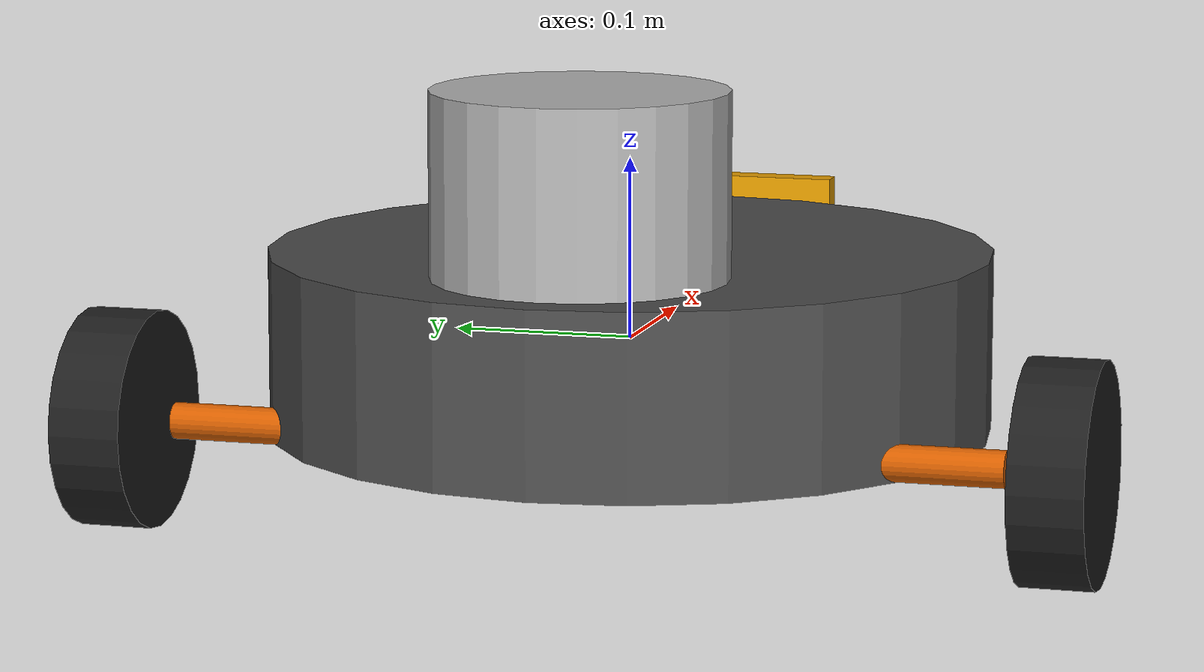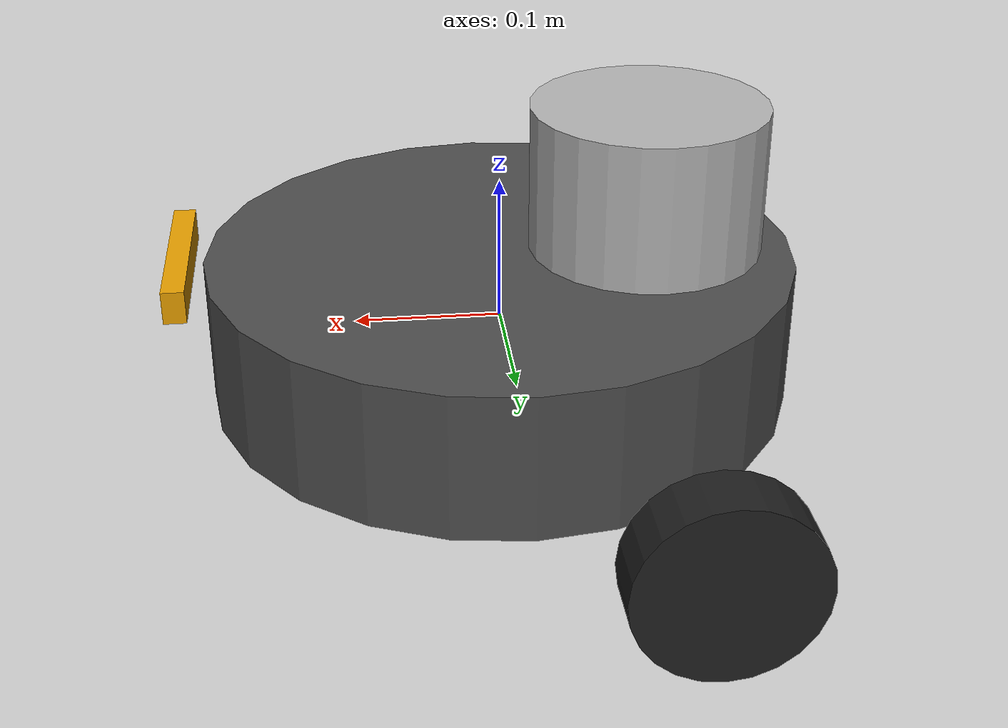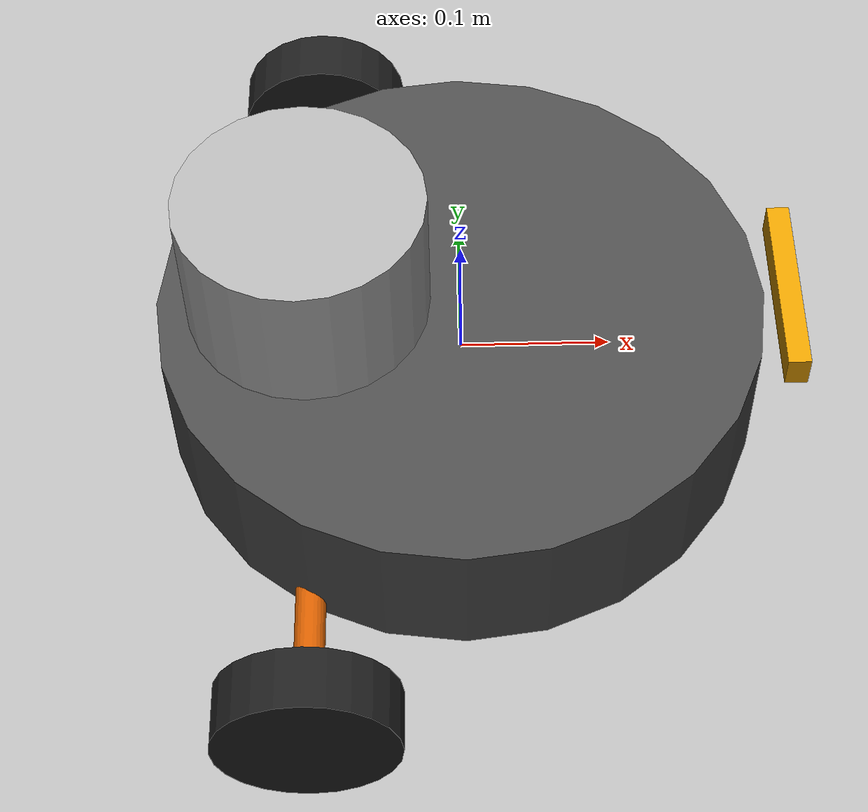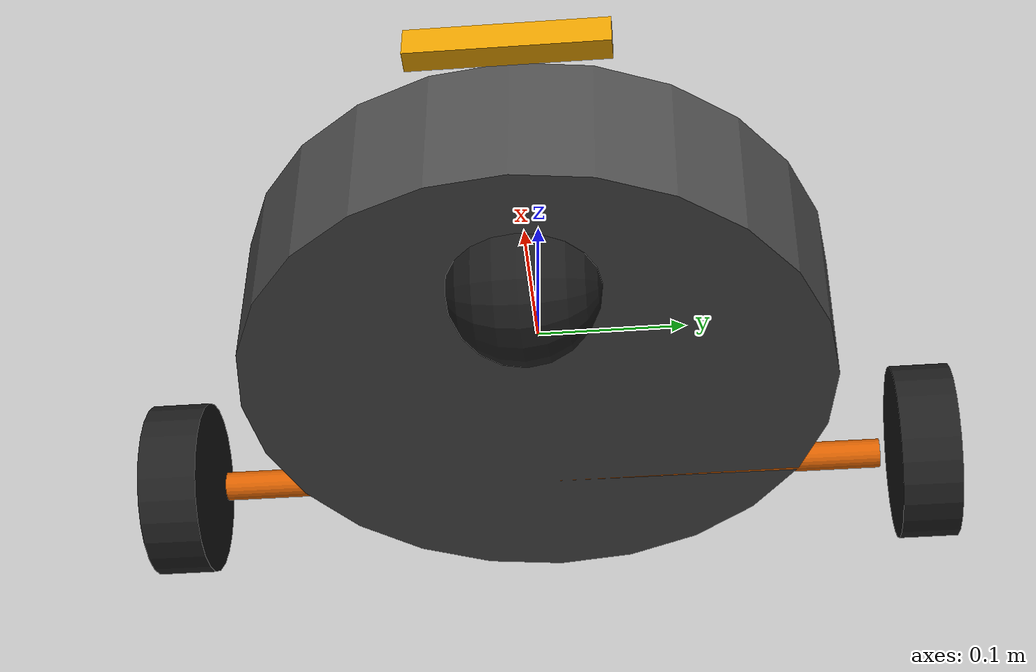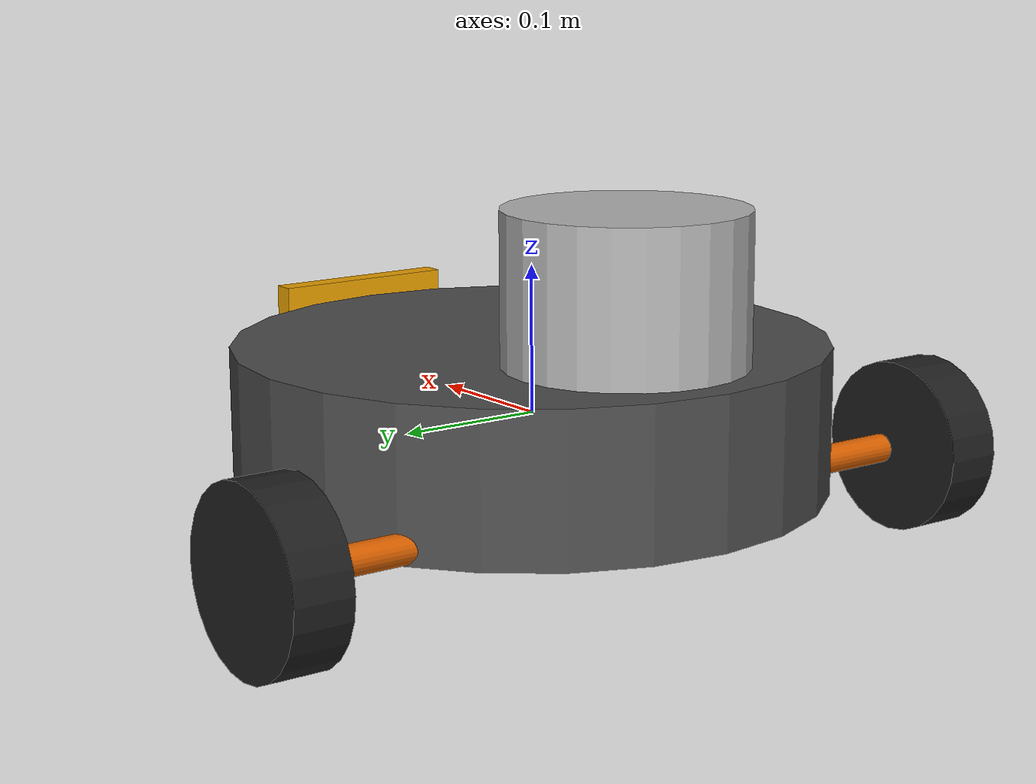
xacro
<?xml version="1.0" ?>
<robot name="vadrouilleur" xmlns:xacro="http://ros.org/wiki/xacro">
  <xacro:include filename="$(find vadrouilleur_description)/urdf/common_properties.xacro"/>
  <xacro:include filename="$(find vadrouilleur_description)/urdf/vadrouilleur_gazebo.gazebo.xacro"/>

  <link name="base_footprint"/>

  <joint name="base_joint" type="fixed">
    <parent link="base_link"/>
    <child link="base_footprint"/>
    <origin xyz="0 0 0.1" rpy="0 0 0"/>
  </joint>

  <link name="base_link">
    <visual>
      <origin xyz="0 0 0" rpy="0 0 0"/>
      <geometry>
        <cylinder length="0.1" radius="0.2"/>
      </geometry>
    </visual>

    <collision>
      <origin xyz="0 0 0" rpy="0 0 0"/>
      <geometry>
        <cylinder length="0.1" radius="0.2"/>
      </geometry>
    </collision>

    <inertial>
      <origin xyz="0 0 0" />
      <mass value="0.5" />
      <inertia ixx="0.04083333333333334" ixy="0.0" ixz="0.0"
              iyy="0.04083333333333334" iyz="0.0"
              izz="0.08000000000000002" />
    </inertial>
  </link>

  <joint name="wheel_left_joint" type="continuous">
    <parent link="base_link"/>
    <child link="wheel_left_link"/>
    <origin xyz="-0.1 0.26 -0.04" rpy="-1.57 0 0"/>
    <axis xyz="0 0 1"/>
  </joint>

  <link name="wheel_left_link">
    <visual>
      <origin xyz="0 0 0" rpy="0 0 0"/>
      <geometry>
        <cylinder length="0.04" radius="0.06"/>
      </geometry>
      <material name="dark"/>
    </visual>

    <collision>
      <origin xyz="0 0 0" rpy="0 0 0"/>
      <geometry>
        <cylinder length="0.04" radius="0.06"/>
      </geometry>
    </collision>

    <inertial>
      <origin xyz="0 0 0" />
      <mass value="0.1" />
      <inertia ixx="0.0010333333333333334" ixy="0.0" ixz="0.0"
              iyy="0.0010333333333333334" iyz="0.0"
              izz="0.0018" />
    </inertial>
  </link>

  <joint name="wheel_right_joint" type="continuous">
    <parent link="base_link"/>
    <child link="wheel_right_link"/>
    <origin xyz="-0.1 -0.26 -0.04" rpy="-1.57 0 0"/>
    <axis xyz="0 0 1"/>
  </joint>

  <link name="wheel_right_link">
    <visual>
      <origin xyz="0 0 0" rpy="0 0 0"/>
      <geometry>
        <cylinder length="0.04" radius="0.06"/>
      </geometry>
      <material name="dark"/>
    </visual>

    <collision>
      <origin xyz="0 0 0" rpy="0 0 0"/>
      <geometry>
        <cylinder length="0.04" radius="0.06"/>
      </geometry>
    </collision>

    <inertial>
      <origin xyz="0 0 0" />
      <mass value="0.1" />
      <inertia ixx="0.0010333333333333334" ixy="0.0" ixz="0.0"
              iyy="0.0010333333333333334" iyz="0.0"
              izz="0.0018" />
    </inertial>
  </link>

  <joint name="caster_back_joint" type="fixed">
    <parent link="base_link"/>
    <child link="caster_back_link"/>
    <origin xyz="0.1 0 -0.05" rpy="-1.57 0 0"/>
  </joint>

  <link name="caster_back_link">
    <visual>
      <origin xyz="0 0 0" rpy="0 0 0"/>
      <geometry>
	      <sphere radius="0.05"/>
      </geometry>
      <material name="dark"/>
    </visual>

    <collision>
      <origin xyz="0 0 0" rpy="0 0 0"/>
      <geometry>
        <sphere radius="0.05"/>
      </geometry>
    </collision>

    <inertial>
      <origin xyz="0 0 0" />
      <mass value="0.05" />
      <inertia ixx="5.0000000000000016e-05" ixy="0.0" ixz="0.0"
              iyy="5.0000000000000016e-05" iyz="0.0"
              izz="5.0000000000000016e-05" />
    </inertial>
  </link>

  <joint name="essieu_joint" type="fixed">
    <parent link="base_link"/>
    <child link="essieu" />
    <origin xyz="-0.1 0 -0.04" rpy="1.57 0 0"/>
  </joint>

  <link name="essieu">
    <visual>
      <origin xyz="0 0 0" rpy="0 0 0"/>
      <geometry>
        <cylinder length="0.46" radius="0.01"/>
      </geometry>
      <material name="dark"/>
    </visual>

    <collision>
      <origin xyz="0 0 0" rpy="0 0 0"/>
      <geometry>
        <cylinder length="0.46" radius="0.01"/>
      </geometry>
    </collision>

    <inertial>
      <origin xyz="0 0 0" />
      <mass value="0.2" />
      <inertia ixx="0.04823333333333333" ixy="0.0" ixz="0.0"
              iyy="0.04823333333333333" iyz="0.0"
              izz="0.0002" />
    </inertial>
  </link>

  <joint name="imu_joint" type="fixed">
    <parent link="base_link"/>
    <child link="imu_link"/>
    <origin xyz="-0.032 0 0.068" rpy="0 0 0"/>
  </joint>

  <link name="imu_link"/>

  <joint name="lidar_joint" type="fixed">
    <parent link="base_link"/>
    <child link="lidar_link"/>
    <origin xyz="-0.1 0 0.1" rpy="0 0 0"/>
  </joint>

  <link name="lidar_link">
    <visual>
      <origin xyz="0 0 0" rpy="0 0 0"/>
      <geometry>
        <cylinder length="0.1" radius="0.08"/>
      </geometry>
    </visual>

    <collision>
      <origin xyz="0 0 0" rpy="0 0 0"/>
      <geometry>
        <cylinder length="0.1" radius="0.08"/>
      </geometry>
    </collision>

    <inertial>
      <origin xyz="0 0 0" />
      <mass value="0.05" />
      <inertia ixx="0.16083333333333336" ixy="0.0" ixz="0.0"
              iyy="0.16083333333333336" iyz="0.0"
              izz="0.32000000000000006" />
    </inertial>
  </link>

  <link name="camera_link">
  <visual>
    <origin xyz="0 0 0" rpy="0 0 0"/>
    <geometry>
      <box size="0.015 0.130 0.022"/>
    </geometry>
  </visual>

  <collision>
    <origin xyz="0 0 0" rpy="0 0 0"/>
    <geometry>
      <box size="0.015 0.130 0.022"/>
    </geometry>
  </collision>

  <inertial>
    <origin xyz="0 0 0" rpy="0 0 0"/>
    <mass value="0.035"/>
    <inertia ixx="0.001"  ixy="0"  ixz="0" iyy="0.001" iyz="0" izz="0.001" />
  </inertial>
</link>

<joint name="camera_joint" type="fixed">
  <parent link="base_link"/>
  <child link="camera_link"/>
  <origin xyz="0.215 0 0.05" rpy="0 0 0"/>
</joint>

<link name="camera_depth_frame"/>

<joint name="camera_depth_joint" type="fixed">
  <origin xyz="0 0 0" rpy="${-pi/2} 0 ${-pi/2}"/>
  <parent link="camera_link"/>
  <child link="camera_depth_frame"/>
</joint>

</robot>
